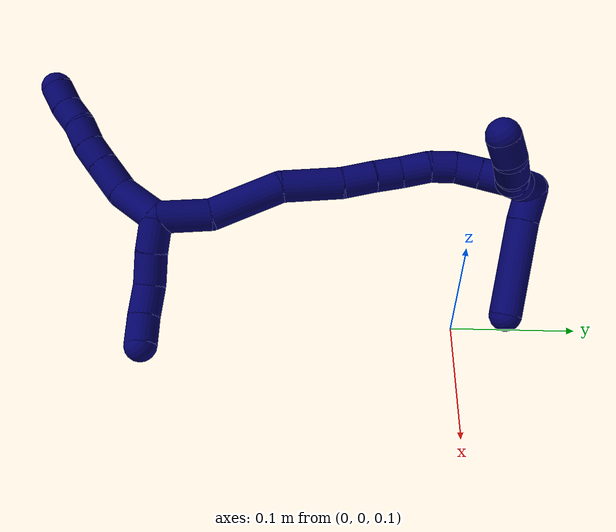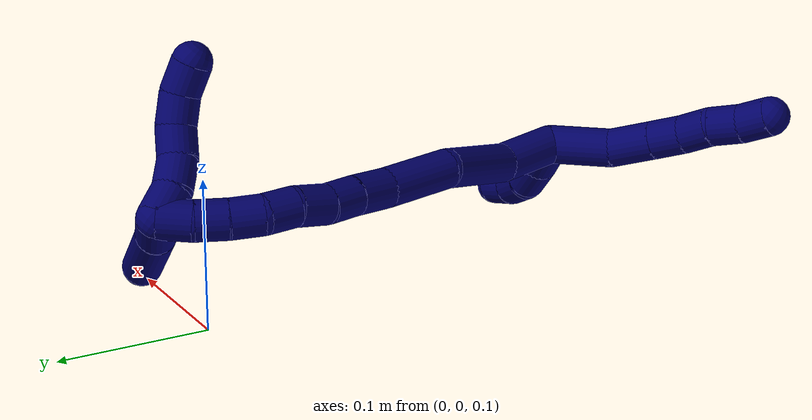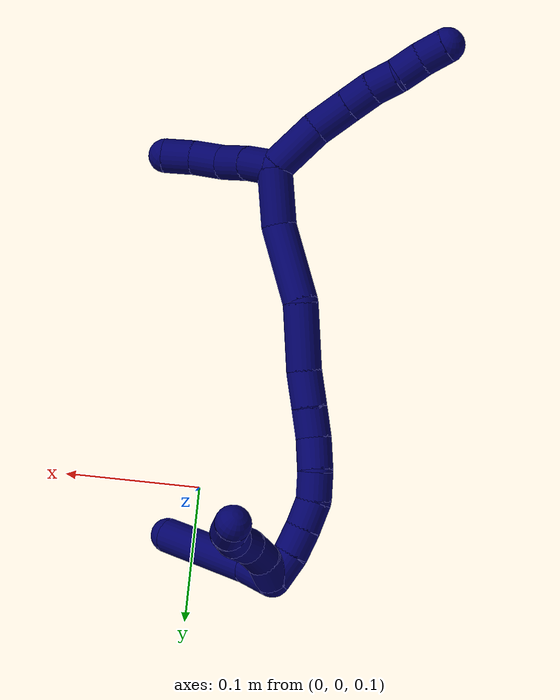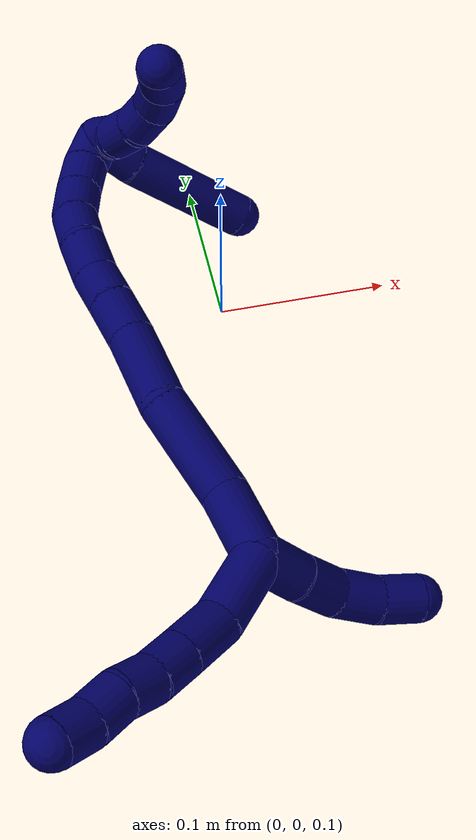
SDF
<sdf version="1.7">
 <world name="default">
  <model name="7">
   <static>0</static>
   <link name="7">
    <collision name="collision-cylinder-e_1_2_8">
     <pose>-0.01166 -0.011765 0.01122 0.809067 -0.622182 -0.273605</pose>
     <geometry><cylinder><radius>0.0125</radius><length>0.040013</length></cylinder></geometry>
     <surface>
      <friction><ode><mu>1.16</mu><mu2>1.16</mu2><slip1>0</slip1><slip2>0</slip2></ode></friction>
      <contact><ode><kp>1e+06</kp><kd>1</kd><max_vel>0</max_vel><min_depth>0.001</min_depth></ode></contact>
     </surface>
    </collision>
    <visual name="visual-cylinder-e_1_2_8">
     <pose>-0.01166 -0.011765 0.01122 0.809067 -0.622182 -0.273605</pose>
     <geometry><cylinder><radius>0.0125</radius><length>0.040013</length></cylinder></geometry>
     <material><ambient>0.003922 0 0.403922 1</ambient></material>
    </visual>
    <collision name="collision-cylinder-e_2_8_9">
     <pose>-0.032152 -0.027844 0.033115 0.384162 -0.654384 -0.131817</pose>
     <geometry><cylinder><radius>0.0125</radius><length>0.029022</length></cylinder></geometry>
     <surface>
      <friction><ode><mu>1.16</mu><mu2>1.16</mu2><slip1>0</slip1><slip2>0</slip2></ode></friction>
      <contact><ode><kp>1e+06</kp><kd>1</kd><max_vel>0</max_vel><min_depth>0.001</min_depth></ode></contact>
     </surface>
    </collision>
    <visual name="visual-cylinder-e_2_8_9">
     <pose>-0.032152 -0.027844 0.033115 0.384162 -0.654384 -0.131817</pose>
     <geometry><cylinder><radius>0.0125</radius><length>0.029022</length></cylinder></geometry>
     <material><ambient>0.003922 0 0.403922 1</ambient></material>
    </visual>
    <collision name="collision-cylinder-e_3_9_10">
     <pose>-0.047366 -0.035122 0.051509 0.366434 -0.657296 -0.126209</pose>
     <geometry><cylinder><radius>0.0125</radius><length>0.020888</length></cylinder></geometry>
     <surface>
      <friction><ode><mu>1.16</mu><mu2>1.16</mu2><slip1>0</slip1><slip2>0</slip2></ode></friction>
      <contact><ode><kp>1e+06</kp><kd>1</kd><max_vel>0</max_vel><min_depth>0.001</min_depth></ode></contact>
     </surface>
    </collision>
    <visual name="visual-cylinder-e_3_9_10">
     <pose>-0.047366 -0.035122 0.051509 0.366434 -0.657296 -0.126209</pose>
     <geometry><cylinder><radius>0.0125</radius><length>0.020888</length></cylinder></geometry>
     <material><ambient>0.003922 0 0.403922 1</ambient></material>
    </visual>
    <collision name="collision-cylinder-e_4_10_11">
     <pose>-0.060287 -0.039101 0.066727 0.134804 -0.712686 -0.050244</pose>
     <geometry><cylinder><radius>0.0125</radius><length>0.020004</length></cylinder></geometry>
     <surface>
      <friction><ode><mu>1.16</mu><mu2>1.16</mu2><slip1>0</slip1><slip2>0</slip2></ode></friction>
      <contact><ode><kp>1e+06</kp><kd>1</kd><max_vel>0</max_vel><min_depth>0.001</min_depth></ode></contact>
     </surface>
    </collision>
    <visual name="visual-cylinder-e_4_10_11">
     <pose>-0.060287 -0.039101 0.066727 0.134804 -0.712686 -0.050244</pose>
     <geometry><cylinder><radius>0.0125</radius><length>0.020004</length></cylinder></geometry>
     <material><ambient>0.003922 0 0.403922 1</ambient></material>
    </visual>
    <collision name="collision-cylinder-e_5_11_12">
     <pose>-0.073388 -0.043503 0.081005 0.463053 -0.713662 -0.175322</pose>
     <geometry><cylinder><radius>0.0125</radius><length>0.020046</length></cylinder></geometry>
     <surface>
      <friction><ode><mu>1.16</mu><mu2>1.16</mu2><slip1>0</slip1><slip2>0</slip2></ode></friction>
      <contact><ode><kp>1e+06</kp><kd>1</kd><max_vel>0</max_vel><min_depth>0.001</min_depth></ode></contact>
     </surface>
    </collision>
    <visual name="visual-cylinder-e_5_11_12">
     <pose>-0.073388 -0.043503 0.081005 0.463053 -0.713662 -0.175322</pose>
     <geometry><cylinder><radius>0.0125</radius><length>0.020046</length></cylinder></geometry>
     <material><ambient>0.003922 0 0.403922 1</ambient></material>
    </visual>
    <collision name="collision-cylinder-e_6_12_6">
     <pose>-0.086469 -0.048281 0.095255 0.184444 -0.709023 -0.068439</pose>
     <geometry><cylinder><radius>0.0125</radius><length>0.020027</length></cylinder></geometry>
     <surface>
      <friction><ode><mu>1.16</mu><mu2>1.16</mu2><slip1>0</slip1><slip2>0</slip2></ode></friction>
      <contact><ode><kp>1e+06</kp><kd>1</kd><max_vel>0</max_vel><min_depth>0.001</min_depth></ode></contact>
     </surface>
    </collision>
    <visual name="visual-cylinder-e_6_12_6">
     <pose>-0.086469 -0.048281 0.095255 0.184444 -0.709023 -0.068439</pose>
     <geometry><cylinder><radius>0.0125</radius><length>0.020027</length></cylinder></geometry>
     <material><ambient>0.003922 0 0.403922 1</ambient></material>
    </visual>
    <collision name="collision-cylinder-e_1_2_13">
     <pose>0.007162 -0.007572 -0.008522 2.41515 0.560909 1.297</pose>
     <geometry><cylinder><radius>0.0125</radius><length>0.026927</length></cylinder></geometry>
     <surface>
      <friction><ode><mu>1.16</mu><mu2>1.16</mu2><slip1>0</slip1><slip2>0</slip2></ode></friction>
      <contact><ode><kp>1e+06</kp><kd>1</kd><max_vel>0</max_vel><min_depth>0.001</min_depth></ode></contact>
     </surface>
    </collision>
    <visual name="visual-cylinder-e_1_2_13">
     <pose>0.007162 -0.007572 -0.008522 2.41515 0.560909 1.297</pose>
     <geometry><cylinder><radius>0.0125</radius><length>0.026927</length></cylinder></geometry>
     <material><ambient>0.003922 0 0.403922 1</ambient></material>
    </visual>
    <collision name="collision-cylinder-e_2_13_14">
     <pose>0.021134 -0.021427 -0.026007 2.53017 0.556587 1.47143</pose>
     <geometry><cylinder><radius>0.0125</radius><length>0.025782</length></cylinder></geometry>
     <surface>
      <friction><ode><mu>1.16</mu><mu2>1.16</mu2><slip1>0</slip1><slip2>0</slip2></ode></friction>
      <contact><ode><kp>1e+06</kp><kd>1</kd><max_vel>0</max_vel><min_depth>0.001</min_depth></ode></contact>
     </surface>
    </collision>
    <visual name="visual-cylinder-e_2_13_14">
     <pose>0.021134 -0.021427 -0.026007 2.53017 0.556587 1.47143</pose>
     <geometry><cylinder><radius>0.0125</radius><length>0.025782</length></cylinder></geometry>
     <material><ambient>0.003922 0 0.403922 1</ambient></material>
    </visual>
    <collision name="collision-cylinder-e_3_14_15">
     <pose>0.037493 -0.032572 -0.040889 2.45411 0.894682 1.85963</pose>
     <geometry><cylinder><radius>0.0125</radius><length>0.024485</length></cylinder></geometry>
     <surface>
      <friction><ode><mu>1.16</mu><mu2>1.16</mu2><slip1>0</slip1><slip2>0</slip2></ode></friction>
      <contact><ode><kp>1e+06</kp><kd>1</kd><max_vel>0</max_vel><min_depth>0.001</min_depth></ode></contact>
     </surface>
    </collision>
    <visual name="visual-cylinder-e_3_14_15">
     <pose>0.037493 -0.032572 -0.040889 2.45411 0.894682 1.85963</pose>
     <geometry><cylinder><radius>0.0125</radius><length>0.024485</length></cylinder></geometry>
     <material><ambient>0.003922 0 0.403922 1</ambient></material>
    </visual>
    <collision name="collision-cylinder-e_4_15_5">
     <pose>0.057084 -0.039889 -0.051624 2.66988 1.07706 2.37666</pose>
     <geometry><cylinder><radius>0.0125</radius><length>0.022807</length></cylinder></geometry>
     <surface>
      <friction><ode><mu>1.16</mu><mu2>1.16</mu2><slip1>0</slip1><slip2>0</slip2></ode></friction>
      <contact><ode><kp>1e+06</kp><kd>1</kd><max_vel>0</max_vel><min_depth>0.001</min_depth></ode></contact>
     </surface>
    </collision>
    <visual name="visual-cylinder-e_4_15_5">
     <pose>0.057084 -0.039889 -0.051624 2.66988 1.07706 2.37666</pose>
     <geometry><cylinder><radius>0.0125</radius><length>0.022807</length></cylinder></geometry>
     <material><ambient>0.003922 0 0.403922 1</ambient></material>
    </visual>
    <collision name="collision-cylinder-e_1_2_16">
     <pose>-0.005317 0.015933 -0.011967 -2.21498 -0.260762 0.51337</pose>
     <geometry><cylinder><radius>0.0125</radius><length>0.041248</length></cylinder></geometry>
     <surface>
      <friction><ode><mu>1.16</mu><mu2>1.16</mu2><slip1>0</slip1><slip2>0</slip2></ode></friction>
      <contact><ode><kp>1e+06</kp><kd>1</kd><max_vel>0</max_vel><min_depth>0.001</min_depth></ode></contact>
     </surface>
    </collision>
    <visual name="visual-cylinder-e_1_2_16">
     <pose>-0.005317 0.015933 -0.011967 -2.21498 -0.260762 0.51337</pose>
     <geometry><cylinder><radius>0.0125</radius><length>0.041248</length></cylinder></geometry>
     <material><ambient>0.003922 0 0.403922 1</ambient></material>
    </visual>
    <collision name="collision-cylinder-e_2_16_17">
     <pose>-0.02116 0.057711 -0.031943 -1.8713 -0.371003 0.498637</pose>
     <geometry><cylinder><radius>0.0125</radius><length>0.058065</length></cylinder></geometry>
     <surface>
      <friction><ode><mu>1.16</mu><mu2>1.16</mu2><slip1>0</slip1><slip2>0</slip2></ode></friction>
      <contact><ode><kp>1e+06</kp><kd>1</kd><max_vel>0</max_vel><min_depth>0.001</min_depth></ode></contact>
     </surface>
    </collision>
    <visual name="visual-cylinder-e_2_16_17">
     <pose>-0.02116 0.057711 -0.031943 -1.8713 -0.371003 0.498637</pose>
     <geometry><cylinder><radius>0.0125</radius><length>0.058065</length></cylinder></geometry>
     <material><ambient>0.003922 0 0.403922 1</ambient></material>
    </visual>
    <collision name="collision-cylinder-e_3_17_18">
     <pose>-0.037121 0.102734 -0.05322 -2.17601 -0.228976 0.431917</pose>
     <geometry><cylinder><radius>0.0125</radius><length>0.047891</length></cylinder></geometry>
     <surface>
      <friction><ode><mu>1.16</mu><mu2>1.16</mu2><slip1>0</slip1><slip2>0</slip2></ode></friction>
      <contact><ode><kp>1e+06</kp><kd>1</kd><max_vel>0</max_vel><min_depth>0.001</min_depth></ode></contact>
     </surface>
    </collision>
    <visual name="visual-cylinder-e_3_17_18">
     <pose>-0.037121 0.102734 -0.05322 -2.17601 -0.228976 0.431917</pose>
     <geometry><cylinder><radius>0.0125</radius><length>0.047891</length></cylinder></geometry>
     <material><ambient>0.003922 0 0.403922 1</ambient></material>
    </visual>
    <collision name="collision-cylinder-e_4_18_19">
     <pose>-0.046281 0.132903 -0.072202 -2.05026 -0.292102 0.475385</pose>
     <geometry><cylinder><radius>0.0125</radius><length>0.02587</length></cylinder></geometry>
     <surface>
      <friction><ode><mu>1.16</mu><mu2>1.16</mu2><slip1>0</slip1><slip2>0</slip2></ode></friction>
      <contact><ode><kp>1e+06</kp><kd>1</kd><max_vel>0</max_vel><min_depth>0.001</min_depth></ode></contact>
     </surface>
    </collision>
    <visual name="visual-cylinder-e_4_18_19">
     <pose>-0.046281 0.132903 -0.072202 -2.05026 -0.292102 0.475385</pose>
     <geometry><cylinder><radius>0.0125</radius><length>0.02587</length></cylinder></geometry>
     <material><ambient>0.003922 0 0.403922 1</ambient></material>
    </visual>
    <collision name="collision-cylinder-e_5_19_20">
     <pose>-0.053201 0.152668 -0.083161 -2.10958 -0.30294 0.5257</pose>
     <geometry><cylinder><radius>0.0125</radius><length>0.021421</length></cylinder></geometry>
     <surface>
      <friction><ode><mu>1.16</mu><mu2>1.16</mu2><slip1>0</slip1><slip2>0</slip2></ode></friction>
      <contact><ode><kp>1e+06</kp><kd>1</kd><max_vel>0</max_vel><min_depth>0.001</min_depth></ode></contact>
     </surface>
    </collision>
    <visual name="visual-cylinder-e_5_19_20">
     <pose>-0.053201 0.152668 -0.083161 -2.10958 -0.30294 0.5257</pose>
     <geometry><cylinder><radius>0.0125</radius><length>0.021421</length></cylinder></geometry>
     <material><ambient>0.003922 0 0.403922 1</ambient></material>
    </visual>
    <collision name="collision-cylinder-e_6_20_21">
     <pose>-0.058383 0.171958 -0.092881 -1.97306 -0.172136 0.259484</pose>
     <geometry><cylinder><radius>0.0125</radius><length>0.023199</length></cylinder></geometry>
     <surface>
      <friction><ode><mu>1.16</mu><mu2>1.16</mu2><slip1>0</slip1><slip2>0</slip2></ode></friction>
      <contact><ode><kp>1e+06</kp><kd>1</kd><max_vel>0</max_vel><min_depth>0.001</min_depth></ode></contact>
     </surface>
    </collision>
    <visual name="visual-cylinder-e_6_20_21">
     <pose>-0.058383 0.171958 -0.092881 -1.97306 -0.172136 0.259484</pose>
     <geometry><cylinder><radius>0.0125</radius><length>0.023199</length></cylinder></geometry>
     <material><ambient>0.003922 0 0.403922 1</ambient></material>
    </visual>
    <collision name="collision-cylinder-e_7_21_22">
     <pose>-0.06164 0.190657 -0.103307 -2.19966 -0.124815 0.244226</pose>
     <geometry><cylinder><radius>0.0125</radius><length>0.020396</length></cylinder></geometry>
     <surface>
      <friction><ode><mu>1.16</mu><mu2>1.16</mu2><slip1>0</slip1><slip2>0</slip2></ode></friction>
      <contact><ode><kp>1e+06</kp><kd>1</kd><max_vel>0</max_vel><min_depth>0.001</min_depth></ode></contact>
     </surface>
    </collision>
    <visual name="visual-cylinder-e_7_21_22">
     <pose>-0.06164 0.190657 -0.103307 -2.19966 -0.124815 0.244226</pose>
     <geometry><cylinder><radius>0.0125</radius><length>0.020396</length></cylinder></geometry>
     <material><ambient>0.003922 0 0.403922 1</ambient></material>
    </visual>
    <collision name="collision-cylinder-e_8_22_23">
     <pose>-0.061003 0.206614 -0.115733 -2.26524 0.186263 -0.39352</pose>
     <geometry><cylinder><radius>0.0125</radius><length>0.020592</length></cylinder></geometry>
     <surface>
      <friction><ode><mu>1.16</mu><mu2>1.16</mu2><slip1>0</slip1><slip2>0</slip2></ode></friction>
      <contact><ode><kp>1e+06</kp><kd>1</kd><max_vel>0</max_vel><min_depth>0.001</min_depth></ode></contact>
     </surface>
    </collision>
    <visual name="visual-cylinder-e_8_22_23">
     <pose>-0.061003 0.206614 -0.115733 -2.26524 0.186263 -0.39352</pose>
     <geometry><cylinder><radius>0.0125</radius><length>0.020592</length></cylinder></geometry>
     <material><ambient>0.003922 0 0.403922 1</ambient></material>
    </visual>
    <collision name="collision-cylinder-e_9_23_24">
     <pose>-0.056365 0.222087 -0.128171 -2.22981 0.273446 -0.547098</pose>
     <geometry><cylinder><radius>0.0125</radius><length>0.020226</length></cylinder></geometry>
     <surface>
      <friction><ode><mu>1.16</mu><mu2>1.16</mu2><slip1>0</slip1><slip2>0</slip2></ode></friction>
      <contact><ode><kp>1e+06</kp><kd>1</kd><max_vel>0</max_vel><min_depth>0.001</min_depth></ode></contact>
     </surface>
    </collision>
    <visual name="visual-cylinder-e_9_23_24">
     <pose>-0.056365 0.222087 -0.128171 -2.22981 0.273446 -0.547098</pose>
     <geometry><cylinder><radius>0.0125</radius><length>0.020226</length></cylinder></geometry>
     <material><ambient>0.003922 0 0.403922 1</ambient></material>
    </visual>
    <collision name="collision-cylinder-e_10_24_1">
     <pose>-0.048995 0.237418 -0.139741 -2.20446 0.455461 -0.85874</pose>
     <geometry><cylinder><radius>0.0125</radius><length>0.021093</length></cylinder></geometry>
     <surface>
      <friction><ode><mu>1.16</mu><mu2>1.16</mu2><slip1>0</slip1><slip2>0</slip2></ode></friction>
      <contact><ode><kp>1e+06</kp><kd>1</kd><max_vel>0</max_vel><min_depth>0.001</min_depth></ode></contact>
     </surface>
    </collision>
    <visual name="visual-cylinder-e_10_24_1">
     <pose>-0.048995 0.237418 -0.139741 -2.20446 0.455461 -0.85874</pose>
     <geometry><cylinder><radius>0.0125</radius><length>0.021093</length></cylinder></geometry>
     <material><ambient>0.003922 0 0.403922 1</ambient></material>
    </visual>
    <collision name="collision-cylinder-e_1_1_25">
     <pose>-0.037056 0.236981 -0.152511 2.29665 0.594775 1.19675</pose>
     <geometry><cylinder><radius>0.0125</radius><length>0.026053</length></cylinder></geometry>
     <surface>
      <friction><ode><mu>1.16</mu><mu2>1.16</mu2><slip1>0</slip1><slip2>0</slip2></ode></friction>
      <contact><ode><kp>1e+06</kp><kd>1</kd><max_vel>0</max_vel><min_depth>0.001</min_depth></ode></contact>
     </surface>
    </collision>
    <visual name="visual-cylinder-e_1_1_25">
     <pose>-0.037056 0.236981 -0.152511 2.29665 0.594775 1.19675</pose>
     <geometry><cylinder><radius>0.0125</radius><length>0.026053</length></cylinder></geometry>
     <material><ambient>0.003922 0 0.403922 1</ambient></material>
    </visual>
    <collision name="collision-cylinder-e_2_25_4">
     <pose>-0.005258 0.209563 -0.179484 2.36805 0.724313 1.49853</pose>
     <geometry><cylinder><radius>0.0125</radius><length>0.073947</length></cylinder></geometry>
     <surface>
      <friction><ode><mu>1.16</mu><mu2>1.16</mu2><slip1>0</slip1><slip2>0</slip2></ode></friction>
      <contact><ode><kp>1e+06</kp><kd>1</kd><max_vel>0</max_vel><min_depth>0.001</min_depth></ode></contact>
     </surface>
    </collision>
    <visual name="visual-cylinder-e_2_25_4">
     <pose>-0.005258 0.209563 -0.179484 2.36805 0.724313 1.49853</pose>
     <geometry><cylinder><radius>0.0125</radius><length>0.073947</length></cylinder></geometry>
     <material><ambient>0.003922 0 0.403922 1</ambient></material>
    </visual>
    <collision name="collision-cylinder-e_1_1_26">
     <pose>-0.038677 0.242632 -0.137482 0.298284 0.60393 0.09354</pose>
     <geometry><cylinder><radius>0.0125</radius><length>0.02</length></cylinder></geometry>
     <surface>
      <friction><ode><mu>1.16</mu><mu2>1.16</mu2><slip1>0</slip1><slip2>0</slip2></ode></friction>
      <contact><ode><kp>1e+06</kp><kd>1</kd><max_vel>0</max_vel><min_depth>0.001</min_depth></ode></contact>
     </surface>
    </collision>
    <visual name="visual-cylinder-e_1_1_26">
     <pose>-0.038677 0.242632 -0.137482 0.298284 0.60393 0.09354</pose>
     <geometry><cylinder><radius>0.0125</radius><length>0.02</length></cylinder></geometry>
     <material><ambient>0.003922 0 0.403922 1</ambient></material>
    </visual>
    <collision name="collision-cylinder-e_2_26_27">
     <pose>-0.025781 0.240069 -0.122694 0.020706 0.806318 0.008832</pose>
     <geometry><cylinder><radius>0.0125</radius><length>0.02</length></cylinder></geometry>
     <surface>
      <friction><ode><mu>1.16</mu><mu2>1.16</mu2><slip1>0</slip1><slip2>0</slip2></ode></friction>
      <contact><ode><kp>1e+06</kp><kd>1</kd><max_vel>0</max_vel><min_depth>0.001</min_depth></ode></contact>
     </surface>
    </collision>
    <visual name="visual-cylinder-e_2_26_27">
     <pose>-0.025781 0.240069 -0.122694 0.020706 0.806318 0.008832</pose>
     <geometry><cylinder><radius>0.0125</radius><length>0.02</length></cylinder></geometry>
     <material><ambient>0.003922 0 0.403922 1</ambient></material>
    </visual>
    <collision name="collision-cylinder-e_3_27_28">
     <pose>-0.011517 0.242548 -0.10918 -0.378524 0.781822 -0.15756</pose>
     <geometry><cylinder><radius>0.0125</radius><length>0.02</length></cylinder></geometry>
     <surface>
      <friction><ode><mu>1.16</mu><mu2>1.16</mu2><slip1>0</slip1><slip2>0</slip2></ode></friction>
      <contact><ode><kp>1e+06</kp><kd>1</kd><max_vel>0</max_vel><min_depth>0.001</min_depth></ode></contact>
     </surface>
    </collision>
    <visual name="visual-cylinder-e_3_27_28">
     <pose>-0.011517 0.242548 -0.10918 -0.378524 0.781822 -0.15756</pose>
     <geometry><cylinder><radius>0.0125</radius><length>0.02</length></cylinder></geometry>
     <material><ambient>0.003922 0 0.403922 1</ambient></material>
    </visual>
    <collision name="collision-cylinder-e_4_28_29">
     <pose>-0.000216 0.248021 -0.093997 -0.320398 0.439559 -0.07216</pose>
     <geometry><cylinder><radius>0.0125</radius><length>0.02</length></cylinder></geometry>
     <surface>
      <friction><ode><mu>1.16</mu><mu2>1.16</mu2><slip1>0</slip1><slip2>0</slip2></ode></friction>
      <contact><ode><kp>1e+06</kp><kd>1</kd><max_vel>0</max_vel><min_depth>0.001</min_depth></ode></contact>
     </surface>
    </collision>
    <visual name="visual-cylinder-e_4_28_29">
     <pose>-0.000216 0.248021 -0.093997 -0.320398 0.439559 -0.07216</pose>
     <geometry><cylinder><radius>0.0125</radius><length>0.02</length></cylinder></geometry>
     <material><ambient>0.003922 0 0.403922 1</ambient></material>
    </visual>
    <collision name="collision-cylinder-e_5_29_3">
     <pose>0.005062 0.253105 -0.075715 -0.226492 0.102473 -0.011665</pose>
     <geometry><cylinder><radius>0.0125</radius><length>0.02</length></cylinder></geometry>
     <surface>
      <friction><ode><mu>1.16</mu><mu2>1.16</mu2><slip1>0</slip1><slip2>0</slip2></ode></friction>
      <contact><ode><kp>1e+06</kp><kd>1</kd><max_vel>0</max_vel><min_depth>0.001</min_depth></ode></contact>
     </surface>
    </collision>
    <visual name="visual-cylinder-e_5_29_3">
     <pose>0.005062 0.253105 -0.075715 -0.226492 0.102473 -0.011665</pose>
     <geometry><cylinder><radius>0.0125</radius><length>0.02</length></cylinder></geometry>
     <material><ambient>0.003922 0 0.403922 1</ambient></material>
    </visual>
    <collision name="collision-sphere-3">
     <pose>0.006085 0.255339 -0.066021 0 -0 0</pose>
     <geometry><sphere><radius>0.0125</radius></sphere></geometry>
     <surface>
      <friction><ode><mu>1.16</mu><mu2>1.16</mu2><slip1>0</slip1><slip2>0</slip2></ode></friction>
      <contact><ode><kp>1e+06</kp><kd>1</kd><max_vel>0</max_vel><min_depth>0.001</min_depth></ode></contact>
     </surface>
    </collision>
    <visual name="visual-sphere-3">
     <pose>0.006085 0.255339 -0.066021 0 -0 0</pose>
     <geometry><sphere><radius>0.0125</radius></sphere></geometry>
     <material><ambient>0.003922 0 0.403922 1</ambient></material>
    </visual>
    <collision name="collision-sphere-29">
     <pose>0.004039 0.250871 -0.085408 0 -0 0</pose>
     <geometry><sphere><radius>0.0125</radius></sphere></geometry>
     <surface>
      <friction><ode><mu>1.16</mu><mu2>1.16</mu2><slip1>0</slip1><slip2>0</slip2></ode></friction>
      <contact><ode><kp>1e+06</kp><kd>1</kd><max_vel>0</max_vel><min_depth>0.001</min_depth></ode></contact>
     </surface>
    </collision>
    <visual name="visual-sphere-29">
     <pose>0.004039 0.250871 -0.085408 0 -0 0</pose>
     <geometry><sphere><radius>0.0125</radius></sphere></geometry>
     <material><ambient>0.003922 0 0.403922 1</ambient></material>
    </visual>
    <collision name="collision-sphere-28">
     <pose>-0.004472 0.245171 -0.102586 0 -0 0</pose>
     <geometry><sphere><radius>0.0125</radius></sphere></geometry>
     <surface>
      <friction><ode><mu>1.16</mu><mu2>1.16</mu2><slip1>0</slip1><slip2>0</slip2></ode></friction>
      <contact><ode><kp>1e+06</kp><kd>1</kd><max_vel>0</max_vel><min_depth>0.001</min_depth></ode></contact>
     </surface>
    </collision>
    <visual name="visual-sphere-28">
     <pose>-0.004472 0.245171 -0.102586 0 -0 0</pose>
     <geometry><sphere><radius>0.0125</radius></sphere></geometry>
     <material><ambient>0.003922 0 0.403922 1</ambient></material>
    </visual>
    <collision name="collision-sphere-27">
     <pose>-0.018563 0.239926 -0.115774 0 -0 0</pose>
     <geometry><sphere><radius>0.0125</radius></sphere></geometry>
     <surface>
      <friction><ode><mu>1.16</mu><mu2>1.16</mu2><slip1>0</slip1><slip2>0</slip2></ode></friction>
      <contact><ode><kp>1e+06</kp><kd>1</kd><max_vel>0</max_vel><min_depth>0.001</min_depth></ode></contact>
     </surface>
    </collision>
    <visual name="visual-sphere-27">
     <pose>-0.018563 0.239926 -0.115774 0 -0 0</pose>
     <geometry><sphere><radius>0.0125</radius></sphere></geometry>
     <material><ambient>0.003922 0 0.403922 1</ambient></material>
    </visual>
    <collision name="collision-sphere-26">
     <pose>-0.032998 0.240213 -0.129614 0 -0 0</pose>
     <geometry><sphere><radius>0.0125</radius></sphere></geometry>
     <surface>
      <friction><ode><mu>1.16</mu><mu2>1.16</mu2><slip1>0</slip1><slip2>0</slip2></ode></friction>
      <contact><ode><kp>1e+06</kp><kd>1</kd><max_vel>0</max_vel><min_depth>0.001</min_depth></ode></contact>
     </surface>
    </collision>
    <visual name="visual-sphere-26">
     <pose>-0.032998 0.240213 -0.129614 0 -0 0</pose>
     <geometry><sphere><radius>0.0125</radius></sphere></geometry>
     <material><ambient>0.003922 0 0.403922 1</ambient></material>
    </visual>
    <collision name="collision-sphere-4">
     <pose>0.019241 0.190216 -0.199296 0 -0 0</pose>
     <geometry><sphere><radius>0.0125</radius></sphere></geometry>
     <surface>
      <friction><ode><mu>1.16</mu><mu2>1.16</mu2><slip1>0</slip1><slip2>0</slip2></ode></friction>
      <contact><ode><kp>1e+06</kp><kd>1</kd><max_vel>0</max_vel><min_depth>0.001</min_depth></ode></contact>
     </surface>
    </collision>
    <visual name="visual-sphere-4">
     <pose>0.019241 0.190216 -0.199296 0 -0 0</pose>
     <geometry><sphere><radius>0.0125</radius></sphere></geometry>
     <material><ambient>0.003922 0 0.403922 1</ambient></material>
    </visual>
    <collision name="collision-sphere-25">
     <pose>-0.029757 0.228911 -0.159673 0 -0 0</pose>
     <geometry><sphere><radius>0.0125</radius></sphere></geometry>
     <surface>
      <friction><ode><mu>1.16</mu><mu2>1.16</mu2><slip1>0</slip1><slip2>0</slip2></ode></friction>
      <contact><ode><kp>1e+06</kp><kd>1</kd><max_vel>0</max_vel><min_depth>0.001</min_depth></ode></contact>
     </surface>
    </collision>
    <visual name="visual-sphere-25">
     <pose>-0.029757 0.228911 -0.159673 0 -0 0</pose>
     <geometry><sphere><radius>0.0125</radius></sphere></geometry>
     <material><ambient>0.003922 0 0.403922 1</ambient></material>
    </visual>
    <collision name="collision-sphere-1">
     <pose>-0.044356 0.24505 -0.145349 0 -0 0</pose>
     <geometry><sphere><radius>0.0125</radius></sphere></geometry>
     <surface>
      <friction><ode><mu>1.16</mu><mu2>1.16</mu2><slip1>0</slip1><slip2>0</slip2></ode></friction>
      <contact><ode><kp>1e+06</kp><kd>1</kd><max_vel>0</max_vel><min_depth>0.001</min_depth></ode></contact>
     </surface>
    </collision>
    <visual name="visual-sphere-1">
     <pose>-0.044356 0.24505 -0.145349 0 -0 0</pose>
     <geometry><sphere><radius>0.0125</radius></sphere></geometry>
     <material><ambient>0.003922 0 0.403922 1</ambient></material>
    </visual>
    <collision name="collision-sphere-24">
     <pose>-0.053634 0.229785 -0.134133 0 -0 0</pose>
     <geometry><sphere><radius>0.0125</radius></sphere></geometry>
     <surface>
      <friction><ode><mu>1.16</mu><mu2>1.16</mu2><slip1>0</slip1><slip2>0</slip2></ode></friction>
      <contact><ode><kp>1e+06</kp><kd>1</kd><max_vel>0</max_vel><min_depth>0.001</min_depth></ode></contact>
     </surface>
    </collision>
    <visual name="visual-sphere-24">
     <pose>-0.053634 0.229785 -0.134133 0 -0 0</pose>
     <geometry><sphere><radius>0.0125</radius></sphere></geometry>
     <material><ambient>0.003922 0 0.403922 1</ambient></material>
    </visual>
    <collision name="collision-sphere-23">
     <pose>-0.059096 0.214389 -0.122208 0 -0 0</pose>
     <geometry><sphere><radius>0.0125</radius></sphere></geometry>
     <surface>
      <friction><ode><mu>1.16</mu><mu2>1.16</mu2><slip1>0</slip1><slip2>0</slip2></ode></friction>
      <contact><ode><kp>1e+06</kp><kd>1</kd><max_vel>0</max_vel><min_depth>0.001</min_depth></ode></contact>
     </surface>
    </collision>
    <visual name="visual-sphere-23">
     <pose>-0.059096 0.214389 -0.122208 0 -0 0</pose>
     <geometry><sphere><radius>0.0125</radius></sphere></geometry>
     <material><ambient>0.003922 0 0.403922 1</ambient></material>
    </visual>
    <collision name="collision-sphere-22">
     <pose>-0.062909 0.19884 -0.109259 0 -0 0</pose>
     <geometry><sphere><radius>0.0125</radius></sphere></geometry>
     <surface>
      <friction><ode><mu>1.16</mu><mu2>1.16</mu2><slip1>0</slip1><slip2>0</slip2></ode></friction>
      <contact><ode><kp>1e+06</kp><kd>1</kd><max_vel>0</max_vel><min_depth>0.001</min_depth></ode></contact>
     </surface>
    </collision>
    <visual name="visual-sphere-22">
     <pose>-0.062909 0.19884 -0.109259 0 -0 0</pose>
     <geometry><sphere><radius>0.0125</radius></sphere></geometry>
     <material><ambient>0.003922 0 0.403922 1</ambient></material>
    </visual>
    <collision name="collision-sphere-21">
     <pose>-0.06037 0.182474 -0.097355 0 -0 0</pose>
     <geometry><sphere><radius>0.0125</radius></sphere></geometry>
     <surface>
      <friction><ode><mu>1.16</mu><mu2>1.16</mu2><slip1>0</slip1><slip2>0</slip2></ode></friction>
      <contact><ode><kp>1e+06</kp><kd>1</kd><max_vel>0</max_vel><min_depth>0.001</min_depth></ode></contact>
     </surface>
    </collision>
    <visual name="visual-sphere-21">
     <pose>-0.06037 0.182474 -0.097355 0 -0 0</pose>
     <geometry><sphere><radius>0.0125</radius></sphere></geometry>
     <material><ambient>0.003922 0 0.403922 1</ambient></material>
    </visual>
    <collision name="collision-sphere-12">
     <pose>-0.079949 -0.046887 0.087784 0 -0 0</pose>
     <geometry><sphere><radius>0.0125</radius></sphere></geometry>
     <surface>
      <friction><ode><mu>1.16</mu><mu2>1.16</mu2><slip1>0</slip1><slip2>0</slip2></ode></friction>
      <contact><ode><kp>1e+06</kp><kd>1</kd><max_vel>0</max_vel><min_depth>0.001</min_depth></ode></contact>
     </surface>
    </collision>
    <visual name="visual-sphere-12">
     <pose>-0.079949 -0.046887 0.087784 0 -0 0</pose>
     <geometry><sphere><radius>0.0125</radius></sphere></geometry>
     <material><ambient>0.003922 0 0.403922 1</ambient></material>
    </visual>
    <collision name="collision-sphere-11">
     <pose>-0.066827 -0.040118 0.074226 0 -0 0</pose>
     <geometry><sphere><radius>0.0125</radius></sphere></geometry>
     <surface>
      <friction><ode><mu>1.16</mu><mu2>1.16</mu2><slip1>0</slip1><slip2>0</slip2></ode></friction>
      <contact><ode><kp>1e+06</kp><kd>1</kd><max_vel>0</max_vel><min_depth>0.001</min_depth></ode></contact>
     </surface>
    </collision>
    <visual name="visual-sphere-11">
     <pose>-0.066827 -0.040118 0.074226 0 -0 0</pose>
     <geometry><sphere><radius>0.0125</radius></sphere></geometry>
     <material><ambient>0.003922 0 0.403922 1</ambient></material>
    </visual>
    <collision name="collision-sphere-10">
     <pose>-0.053747 -0.038084 0.059228 0 -0 0</pose>
     <geometry><sphere><radius>0.0125</radius></sphere></geometry>
     <surface>
      <friction><ode><mu>1.16</mu><mu2>1.16</mu2><slip1>0</slip1><slip2>0</slip2></ode></friction>
      <contact><ode><kp>1e+06</kp><kd>1</kd><max_vel>0</max_vel><min_depth>0.001</min_depth></ode></contact>
     </surface>
    </collision>
    <visual name="visual-sphere-10">
     <pose>-0.053747 -0.038084 0.059228 0 -0 0</pose>
     <geometry><sphere><radius>0.0125</radius></sphere></geometry>
     <material><ambient>0.003922 0 0.403922 1</ambient></material>
    </visual>
    <collision name="collision-sphere-9">
     <pose>-0.040985 -0.032159 0.043789 0 -0 0</pose>
     <geometry><sphere><radius>0.0125</radius></sphere></geometry>
     <surface>
      <friction><ode><mu>1.16</mu><mu2>1.16</mu2><slip1>0</slip1><slip2>0</slip2></ode></friction>
      <contact><ode><kp>1e+06</kp><kd>1</kd><max_vel>0</max_vel><min_depth>0.001</min_depth></ode></contact>
     </surface>
    </collision>
    <visual name="visual-sphere-9">
     <pose>-0.040985 -0.032159 0.043789 0 -0 0</pose>
     <geometry><sphere><radius>0.0125</radius></sphere></geometry>
     <material><ambient>0.003922 0 0.403922 1</ambient></material>
    </visual>
    <collision name="collision-sphere-2">
     <geometry><sphere><radius>0.0125</radius></sphere></geometry>
     <surface>
      <friction><ode><mu>1.16</mu><mu2>1.16</mu2><slip1>0</slip1><slip2>0</slip2></ode></friction>
      <contact><ode><kp>1e+06</kp><kd>1</kd><max_vel>0</max_vel><min_depth>0.001</min_depth></ode></contact>
     </surface>
    </collision>
    <visual name="visual-sphere-2">
     <geometry><sphere><radius>0.0125</radius></sphere></geometry>
     <material><ambient>0.003922 0 0.403922 1</ambient></material>
    </visual>
    <collision name="collision-sphere-19">
     <pose>-0.050006 0.143893 -0.077916 0 -0 0</pose>
     <geometry><sphere><radius>0.0125</radius></sphere></geometry>
     <surface>
      <friction><ode><mu>1.16</mu><mu2>1.16</mu2><slip1>0</slip1><slip2>0</slip2></ode></friction>
      <contact><ode><kp>1e+06</kp><kd>1</kd><max_vel>0</max_vel><min_depth>0.001</min_depth></ode></contact>
     </surface>
    </collision>
    <visual name="visual-sphere-19">
     <pose>-0.050006 0.143893 -0.077916 0 -0 0</pose>
     <geometry><sphere><radius>0.0125</radius></sphere></geometry>
     <material><ambient>0.003922 0 0.403922 1</ambient></material>
    </visual>
    <collision name="collision-sphere-8">
     <pose>-0.02332 -0.023529 0.022441 0 -0 0</pose>
     <geometry><sphere><radius>0.0125</radius></sphere></geometry>
     <surface>
      <friction><ode><mu>1.16</mu><mu2>1.16</mu2><slip1>0</slip1><slip2>0</slip2></ode></friction>
      <contact><ode><kp>1e+06</kp><kd>1</kd><max_vel>0</max_vel><min_depth>0.001</min_depth></ode></contact>
     </surface>
    </collision>
    <visual name="visual-sphere-8">
     <pose>-0.02332 -0.023529 0.022441 0 -0 0</pose>
     <geometry><sphere><radius>0.0125</radius></sphere></geometry>
     <material><ambient>0.003922 0 0.403922 1</ambient></material>
    </visual>
    <collision name="collision-sphere-6">
     <pose>-0.092989 -0.049675 0.102726 0 -0 0</pose>
     <geometry><sphere><radius>0.0125</radius></sphere></geometry>
     <surface>
      <friction><ode><mu>1.16</mu><mu2>1.16</mu2><slip1>0</slip1><slip2>0</slip2></ode></friction>
      <contact><ode><kp>1e+06</kp><kd>1</kd><max_vel>0</max_vel><min_depth>0.001</min_depth></ode></contact>
     </surface>
    </collision>
    <visual name="visual-sphere-6">
     <pose>-0.092989 -0.049675 0.102726 0 -0 0</pose>
     <geometry><sphere><radius>0.0125</radius></sphere></geometry>
     <material><ambient>0.003922 0 0.403922 1</ambient></material>
    </visual>
    <collision name="collision-sphere-13">
     <pose>0.014324 -0.015145 -0.017044 0 -0 0</pose>
     <geometry><sphere><radius>0.0125</radius></sphere></geometry>
     <surface>
      <friction><ode><mu>1.16</mu><mu2>1.16</mu2><slip1>0</slip1><slip2>0</slip2></ode></friction>
      <contact><ode><kp>1e+06</kp><kd>1</kd><max_vel>0</max_vel><min_depth>0.001</min_depth></ode></contact>
     </surface>
    </collision>
    <visual name="visual-sphere-13">
     <pose>0.014324 -0.015145 -0.017044 0 -0 0</pose>
     <geometry><sphere><radius>0.0125</radius></sphere></geometry>
     <material><ambient>0.003922 0 0.403922 1</ambient></material>
    </visual>
    <collision name="collision-sphere-14">
     <pose>0.027944 -0.02771 -0.034969 0 -0 0</pose>
     <geometry><sphere><radius>0.0125</radius></sphere></geometry>
     <surface>
      <friction><ode><mu>1.16</mu><mu2>1.16</mu2><slip1>0</slip1><slip2>0</slip2></ode></friction>
      <contact><ode><kp>1e+06</kp><kd>1</kd><max_vel>0</max_vel><min_depth>0.001</min_depth></ode></contact>
     </surface>
    </collision>
    <visual name="visual-sphere-14">
     <pose>0.027944 -0.02771 -0.034969 0 -0 0</pose>
     <geometry><sphere><radius>0.0125</radius></sphere></geometry>
     <material><ambient>0.003922 0 0.403922 1</ambient></material>
    </visual>
    <collision name="collision-sphere-15">
     <pose>0.047042 -0.037433 -0.04681 0 -0 0</pose>
     <geometry><sphere><radius>0.0125</radius></sphere></geometry>
     <surface>
      <friction><ode><mu>1.16</mu><mu2>1.16</mu2><slip1>0</slip1><slip2>0</slip2></ode></friction>
      <contact><ode><kp>1e+06</kp><kd>1</kd><max_vel>0</max_vel><min_depth>0.001</min_depth></ode></contact>
     </surface>
    </collision>
    <visual name="visual-sphere-15">
     <pose>0.047042 -0.037433 -0.04681 0 -0 0</pose>
     <geometry><sphere><radius>0.0125</radius></sphere></geometry>
     <material><ambient>0.003922 0 0.403922 1</ambient></material>
    </visual>
    <collision name="collision-sphere-5">
     <pose>0.067125 -0.042345 -0.056439 0 -0 0</pose>
     <geometry><sphere><radius>0.0125</radius></sphere></geometry>
     <surface>
      <friction><ode><mu>1.16</mu><mu2>1.16</mu2><slip1>0</slip1><slip2>0</slip2></ode></friction>
      <contact><ode><kp>1e+06</kp><kd>1</kd><max_vel>0</max_vel><min_depth>0.001</min_depth></ode></contact>
     </surface>
    </collision>
    <visual name="visual-sphere-5">
     <pose>0.067125 -0.042345 -0.056439 0 -0 0</pose>
     <geometry><sphere><radius>0.0125</radius></sphere></geometry>
     <material><ambient>0.003922 0 0.403922 1</ambient></material>
    </visual>
    <collision name="collision-sphere-16">
     <pose>-0.010634 0.031866 -0.023934 0 -0 0</pose>
     <geometry><sphere><radius>0.0125</radius></sphere></geometry>
     <surface>
      <friction><ode><mu>1.16</mu><mu2>1.16</mu2><slip1>0</slip1><slip2>0</slip2></ode></friction>
      <contact><ode><kp>1e+06</kp><kd>1</kd><max_vel>0</max_vel><min_depth>0.001</min_depth></ode></contact>
     </surface>
    </collision>
    <visual name="visual-sphere-16">
     <pose>-0.010634 0.031866 -0.023934 0 -0 0</pose>
     <geometry><sphere><radius>0.0125</radius></sphere></geometry>
     <material><ambient>0.003922 0 0.403922 1</ambient></material>
    </visual>
    <collision name="collision-sphere-17">
     <pose>-0.031686 0.083556 -0.039952 0 -0 0</pose>
     <geometry><sphere><radius>0.0125</radius></sphere></geometry>
     <surface>
      <friction><ode><mu>1.16</mu><mu2>1.16</mu2><slip1>0</slip1><slip2>0</slip2></ode></friction>
      <contact><ode><kp>1e+06</kp><kd>1</kd><max_vel>0</max_vel><min_depth>0.001</min_depth></ode></contact>
     </surface>
    </collision>
    <visual name="visual-sphere-17">
     <pose>-0.031686 0.083556 -0.039952 0 -0 0</pose>
     <geometry><sphere><radius>0.0125</radius></sphere></geometry>
     <material><ambient>0.003922 0 0.403922 1</ambient></material>
    </visual>
    <collision name="collision-sphere-18">
     <pose>-0.042556 0.121913 -0.066488 0 -0 0</pose>
     <geometry><sphere><radius>0.0125</radius></sphere></geometry>
     <surface>
      <friction><ode><mu>1.16</mu><mu2>1.16</mu2><slip1>0</slip1><slip2>0</slip2></ode></friction>
      <contact><ode><kp>1e+06</kp><kd>1</kd><max_vel>0</max_vel><min_depth>0.001</min_depth></ode></contact>
     </surface>
    </collision>
    <visual name="visual-sphere-18">
     <pose>-0.042556 0.121913 -0.066488 0 -0 0</pose>
     <geometry><sphere><radius>0.0125</radius></sphere></geometry>
     <material><ambient>0.003922 0 0.403922 1</ambient></material>
    </visual>
    <collision name="collision-sphere-20">
     <pose>-0.056396 0.161442 -0.088406 0 -0 0</pose>
     <geometry><sphere><radius>0.0125</radius></sphere></geometry>
     <surface>
      <friction><ode><mu>1.16</mu><mu2>1.16</mu2><slip1>0</slip1><slip2>0</slip2></ode></friction>
      <contact><ode><kp>1e+06</kp><kd>1</kd><max_vel>0</max_vel><min_depth>0.001</min_depth></ode></contact>
     </surface>
    </collision>
    <visual name="visual-sphere-20">
     <pose>-0.056396 0.161442 -0.088406 0 -0 0</pose>
     <geometry><sphere><radius>0.0125</radius></sphere></geometry>
     <material><ambient>0.003922 0 0.403922 1</ambient></material>
    </visual>
    <inertial>
     <pose>-0.024295 0.101826 -0.059313 0 -0 0</pose>
     <mass>0.75</mass>
     <inertia>
      <ixx>0.000115</ixx>
      <ixy>0</ixy>
      <ixz>0</ixz>
      <iyy>8.5e-05</iyy>
      <iyz>0</iyz>
      <izz>-3.1e-05</izz>
     </inertia>
    </inertial>
   </link>
   <pose>-0.03073 -0.231828 0.194986 0.602382 -0.219932 -0.064849</pose>
  </model>
 </world>
</sdf>
